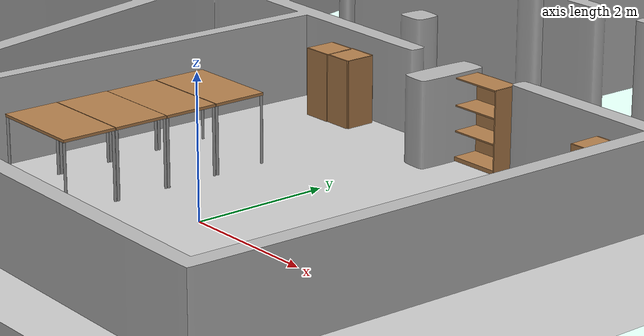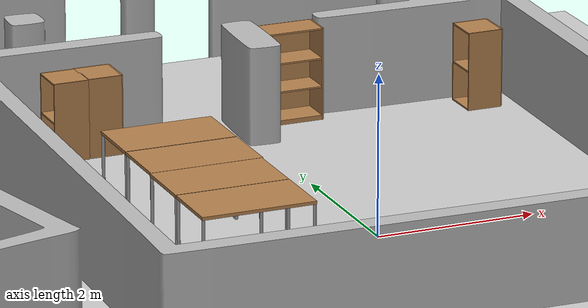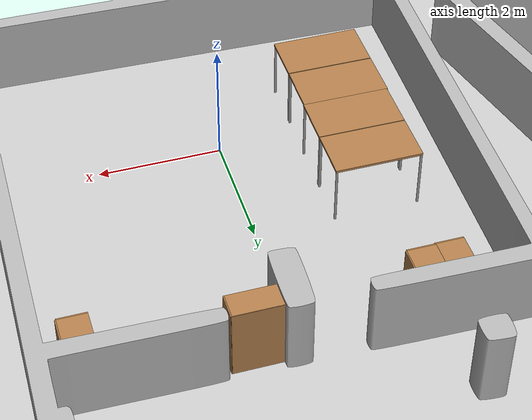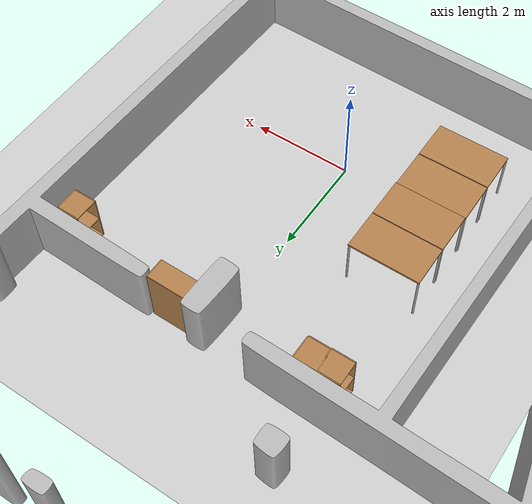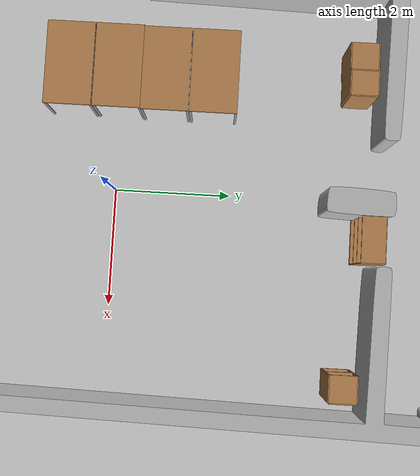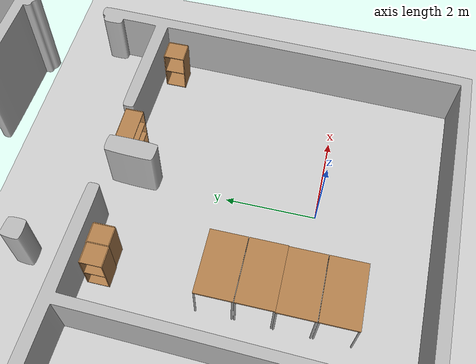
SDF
<sdf version="1.6">
 <world name="default">
  <light name="sun" type="directional">
   <pose>0 0 10 0 -0 0</pose>
   <diffuse>0.8 0.8 0.8 1</diffuse>
   <specular>0.1 0.1 0.1 1</specular>
   <attenuation>
    <range>1000</range>
    <constant>0.9</constant>
    <linear>0.01</linear>
    <quadratic>0.001</quadratic>
   </attenuation>
   <direction>-0.5 0.5 -1</direction>
  </light>
  <model name="ground_plane">
   <static>1</static>
   <link name="link">
    <collision name="collision">
     <geometry><plane><normal>0 0 1</normal><size>100 100</size></plane></geometry>
     <surface><friction><ode><mu>100</mu><mu2>50</mu2></ode></friction></surface>
    </collision>
    <visual name="visual">
     <cast_shadows>0</cast_shadows>
     <geometry><plane><normal>0 0 1</normal><size>100 100</size></plane></geometry>
     <material>
      <script><uri>file://media/materials/scripts/gazebo.material</uri><name>Gazebo/Grey</name></script>
     </material>
    </visual>
   </link>
  </model>
  <model name="brsu_ground_floor">
   <pose>-85 -30 0 0 -0 0</pose>
   <static>1</static>
   <link name="body">
    <visual name="visual">
     <geometry><mesh><uri>file://brsu_ground_floor.stl</uri><scale>1 1 1</scale></mesh></geometry>
    </visual>
    <collision name="collision">
     <geometry><mesh><uri>file://brsu_ground_floor.stl</uri><scale>1 1 1</scale></mesh></geometry>
    </collision>
   </link>
  </model>
  <gravity>0 0 -9.8</gravity>
  <magnetic_field>6e-06 2.3e-05 -4.2e-05</magnetic_field>
  <atmosphere type="adiabatic"/>
  <physics name="default_physics" default="0" type="ode">
   <max_step_size>0.001</max_step_size>
   <real_time_factor>1</real_time_factor>
   <real_time_update_rate>1000</real_time_update_rate>
  </physics>
  <scene><ambient>0.4 0.4 0.4 1</ambient><background>0.7 0.7 0.7 1</background><shadows>1</shadows></scene>
  <spherical_coordinates>
   <surface_model>EARTH_WGS84</surface_model>
   <latitude_deg>0</latitude_deg>
   <longitude_deg>0</longitude_deg>
   <elevation>0</elevation>
   <heading_deg>0</heading_deg>
  </spherical_coordinates>
  <model name="cabinet">
   <static>1</static>
   <link name="cabinet_bottom_plate">
    <inertial>
     <pose>0 0 -1 0 -0 0</pose>
     <inertia><ixx>2.05</ixx><ixy>0</ixy><ixz>0</ixz><iyy>2.05</iyy><iyz>0</iyz><izz>2.05</izz></inertia>
     <mass>25</mass>
    </inertial>
    <collision name="cabinet_bottom_plate_geom">
     <pose>0 0 0.01 0 -0 0</pose>
     <geometry><box><size>0.45 0.45 0.02</size></box></geometry>
    </collision>
    <visual name="cabinet_bottom_plate_geom_visual">
     <pose>0 0 0.01 0 -0 0</pose>
     <geometry><box><size>0.45 0.45 0.02</size></box></geometry>
     <material>
      <script><uri>file://media/materials/scripts/gazebo.material</uri><name>Gazebo/Wood</name></script>
     </material>
    </visual>
    <collision name="cabinet_bottom_plate_geom_cabinet_back_plate">
     <pose>0.235 0 0.51 0 -0 0</pose>
     <geometry><box><size>0.02 0.45 1.02</size></box></geometry>
    </collision>
    <visual name="cabinet_bottom_plate_geom_cabinet_back_plate_visual">
     <pose>0.235 0 0.51 0 -0 0</pose>
     <geometry><box><size>0.02 0.45 1.02</size></box></geometry>
     <material>
      <script><uri>file://media/materials/scripts/gazebo.material</uri><name>Gazebo/Wood</name></script>
     </material>
    </visual>
    <collision name="cabinet_bottom_plate_geom_cabinet_left_plate">
     <pose>0 0.235 0.51 0 -0 0</pose>
     <geometry><box><size>0.45 0.02 1.02</size></box></geometry>
    </collision>
    <visual name="cabinet_bottom_plate_geom_cabinet_left_plate_visual">
     <pose>0 0.235 0.51 0 -0 0</pose>
     <geometry><box><size>0.45 0.02 1.02</size></box></geometry>
     <material>
      <script><uri>file://media/materials/scripts/gazebo.material</uri><name>Gazebo/Wood</name></script>
     </material>
    </visual>
    <collision name="cabinet_bottom_plate_geom_cabinet_middle_plate">
     <pose>0 0 0.51 0 -0 0</pose>
     <geometry><box><size>0.45 0.45 0.02</size></box></geometry>
    </collision>
    <visual name="cabinet_bottom_plate_geom_cabinet_middle_plate_visual">
     <pose>0 0 0.51 0 -0 0</pose>
     <geometry><box><size>0.45 0.45 0.02</size></box></geometry>
     <material>
      <script><uri>file://media/materials/scripts/gazebo.material</uri><name>Gazebo/Wood</name></script>
     </material>
    </visual>
    <collision name="cabinet_bottom_plate_geom_cabinet_right_plate">
     <pose>0 -0.235 0.51 0 -0 0</pose>
     <geometry><box><size>0.45 0.02 1.02</size></box></geometry>
    </collision>
    <visual name="cabinet_bottom_plate_geom_cabinet_right_plate_visual">
     <pose>0 -0.235 0.51 0 -0 0</pose>
     <geometry><box><size>0.45 0.02 1.02</size></box></geometry>
     <material>
      <script><uri>file://media/materials/scripts/gazebo.material</uri><name>Gazebo/Wood</name></script>
     </material>
    </visual>
    <collision name="cabinet_bottom_plate_geom_cabinet_top_plate">
     <pose>0 0 1.01 0 -0 0</pose>
     <geometry><box><size>0.45 0.45 0.02</size></box></geometry>
    </collision>
    <visual name="cabinet_bottom_plate_geom_cabinet_top_plate_visual">
     <pose>0 0 1.01 0 -0 0</pose>
     <geometry><box><size>0.45 0.45 0.02</size></box></geometry>
     <material>
      <script><uri>file://media/materials/scripts/gazebo.material</uri><name>Gazebo/Wood</name></script>
     </material>
    </visual>
   </link>
   <pose>-2.35843 4.1236 0 0 -0 0</pose>
  </model>
  <model name="cabinet_0">
   <static>1</static>
   <link name="cabinet_bottom_plate">
    <inertial>
     <pose>0 0 -1 0 -0 0</pose>
     <inertia><ixx>2.05</ixx><ixy>0</ixy><ixz>0</ixz><iyy>2.05</iyy><iyz>0</iyz><izz>2.05</izz></inertia>
     <mass>25</mass>
    </inertial>
    <collision name="cabinet_bottom_plate_geom">
     <pose>0 0 0.01 0 -0 0</pose>
     <geometry><box><size>0.45 0.45 0.02</size></box></geometry>
    </collision>
    <visual name="cabinet_bottom_plate_geom_visual">
     <pose>0 0 0.01 0 -0 0</pose>
     <geometry><box><size>0.45 0.45 0.02</size></box></geometry>
     <material>
      <script><uri>file://media/materials/scripts/gazebo.material</uri><name>Gazebo/Wood</name></script>
     </material>
    </visual>
    <collision name="cabinet_bottom_plate_geom_cabinet_back_plate">
     <pose>0.235 0 0.51 0 -0 0</pose>
     <geometry><box><size>0.02 0.45 1.02</size></box></geometry>
    </collision>
    <visual name="cabinet_bottom_plate_geom_cabinet_back_plate_visual">
     <pose>0.235 0 0.51 0 -0 0</pose>
     <geometry><box><size>0.02 0.45 1.02</size></box></geometry>
     <material>
      <script><uri>file://media/materials/scripts/gazebo.material</uri><name>Gazebo/Wood</name></script>
     </material>
    </visual>
    <collision name="cabinet_bottom_plate_geom_cabinet_left_plate">
     <pose>0 0.235 0.51 0 -0 0</pose>
     <geometry><box><size>0.45 0.02 1.02</size></box></geometry>
    </collision>
    <visual name="cabinet_bottom_plate_geom_cabinet_left_plate_visual">
     <pose>0 0.235 0.51 0 -0 0</pose>
     <geometry><box><size>0.45 0.02 1.02</size></box></geometry>
     <material>
      <script><uri>file://media/materials/scripts/gazebo.material</uri><name>Gazebo/Wood</name></script>
     </material>
    </visual>
    <collision name="cabinet_bottom_plate_geom_cabinet_middle_plate">
     <pose>0 0 0.51 0 -0 0</pose>
     <geometry><box><size>0.45 0.45 0.02</size></box></geometry>
    </collision>
    <visual name="cabinet_bottom_plate_geom_cabinet_middle_plate_visual">
     <pose>0 0 0.51 0 -0 0</pose>
     <geometry><box><size>0.45 0.45 0.02</size></box></geometry>
     <material>
      <script><uri>file://media/materials/scripts/gazebo.material</uri><name>Gazebo/Wood</name></script>
     </material>
    </visual>
    <collision name="cabinet_bottom_plate_geom_cabinet_right_plate">
     <pose>0 -0.235 0.51 0 -0 0</pose>
     <geometry><box><size>0.45 0.02 1.02</size></box></geometry>
    </collision>
    <visual name="cabinet_bottom_plate_geom_cabinet_right_plate_visual">
     <pose>0 -0.235 0.51 0 -0 0</pose>
     <geometry><box><size>0.45 0.02 1.02</size></box></geometry>
     <material>
      <script><uri>file://media/materials/scripts/gazebo.material</uri><name>Gazebo/Wood</name></script>
     </material>
    </visual>
    <collision name="cabinet_bottom_plate_geom_cabinet_top_plate">
     <pose>0 0 1.01 0 -0 0</pose>
     <geometry><box><size>0.45 0.45 0.02</size></box></geometry>
    </collision>
    <visual name="cabinet_bottom_plate_geom_cabinet_top_plate_visual">
     <pose>0 0 1.01 0 -0 0</pose>
     <geometry><box><size>0.45 0.45 0.02</size></box></geometry>
     <material>
      <script><uri>file://media/materials/scripts/gazebo.material</uri><name>Gazebo/Wood</name></script>
     </material>
    </visual>
   </link>
   <pose>-1.92389 4.1364 0 0 -0 0</pose>
  </model>
  <model name="bookshelf">
   <static>1</static>
   <link name="link">
    <inertial><mass>1</mass></inertial>
    <collision name="back">
     <pose>0 0.005 0.6 0 -0 0</pose>
     <geometry><box><size>0.9 0.01 1.2</size></box></geometry>
    </collision>
    <visual name="visual1">
     <pose>0 0.005 0.6 0 -0 0</pose>
     <geometry><box><size>0.9 0.01 1.2</size></box></geometry>
     <material>
      <script><uri>file://media/materials/scripts/gazebo.material</uri><name>Gazebo/Wood</name></script>
     </material>
    </visual>
    <collision name="left_side">
     <pose>0.45 -0.195 0.6 0 -0 0</pose>
     <geometry><box><size>0.02 0.4 1.2</size></box></geometry>
    </collision>
    <visual name="visual2">
     <pose>0.45 -0.195 0.6 0 -0 0</pose>
     <geometry><box><size>0.02 0.4 1.2</size></box></geometry>
     <material>
      <script><uri>file://media/materials/scripts/gazebo.material</uri><name>Gazebo/Wood</name></script>
     </material>
    </visual>
    <collision name="right_side">
     <pose>-0.45 -0.195 0.6 0 -0 0</pose>
     <geometry><box><size>0.02 0.4 1.2</size></box></geometry>
    </collision>
    <visual name="visual3">
     <pose>-0.45 -0.195 0.6 0 -0 0</pose>
     <geometry><box><size>0.02 0.4 1.2</size></box></geometry>
     <material>
      <script><uri>file://media/materials/scripts/gazebo.material</uri><name>Gazebo/Wood</name></script>
     </material>
    </visual>
    <collision name="bottom">
     <pose>0 -0.195 0.03 0 -0 0</pose>
     <geometry><box><size>0.88 0.4 0.06</size></box></geometry>
    </collision>
    <visual name="visual4">
     <pose>0 -0.195 0.03 0 -0 0</pose>
     <geometry><box><size>0.88 0.4 0.06</size></box></geometry>
     <material>
      <script><uri>file://media/materials/scripts/gazebo.material</uri><name>Gazebo/Wood</name></script>
     </material>
    </visual>
    <collision name="top">
     <pose>0 -0.195 1.19 0 -0 0</pose>
     <geometry><box><size>0.88 0.4 0.02</size></box></geometry>
    </collision>
    <visual name="visual5">
     <pose>0 -0.195 1.19 0 -0 0</pose>
     <geometry><box><size>0.88 0.4 0.02</size></box></geometry>
     <material>
      <script><uri>file://media/materials/scripts/gazebo.material</uri><name>Gazebo/Wood</name></script>
     </material>
    </visual>
    <collision name="low_shelf">
     <pose>0 -0.195 0.43 0 -0 0</pose>
     <geometry><box><size>0.88 0.4 0.02</size></box></geometry>
    </collision>
    <visual name="visual6">
     <pose>0 -0.195 0.43 0 -0 0</pose>
     <geometry><box><size>0.88 0.4 0.02</size></box></geometry>
     <material>
      <script><uri>file://media/materials/scripts/gazebo.material</uri><name>Gazebo/Wood</name></script>
     </material>
    </visual>
    <collision name="high_shelf">
     <pose>0 -0.195 0.8 0 -0 0</pose>
     <geometry><box><size>0.88 0.4 0.02</size></box></geometry>
    </collision>
    <visual name="visual7">
     <pose>0 -0.195 0.8 0 -0 0</pose>
     <geometry><box><size>0.88 0.4 0.02</size></box></geometry>
     <material>
      <script><uri>file://media/materials/scripts/gazebo.material</uri><name>Gazebo/Wood</name></script>
     </material>
    </visual>
   </link>
   <pose>0.631704 4.54535 0 0 -0 0</pose>
  </model>
  <model name="table">
   <static>0</static>
   <link name="link">
    <collision name="surface">
     <pose>0 0 1 0 -0 0</pose>
     <geometry><box><size>1.5 0.8 0.03</size></box></geometry>
     <surface><friction><ode><mu>0.6</mu><mu2>0.6</mu2></ode></friction></surface>
    </collision>
    <visual name="visual1">
     <pose>0 0 1 0 -0 0</pose>
     <geometry><box><size>1.4 0.8 0.04</size></box></geometry>
     <material>
      <script><uri>file://media/materials/scripts/gazebo.material</uri><name>Gazebo/Wood</name></script>
     </material>
    </visual>
    <collision name="front_left_leg">
     <pose>0.68 0.38 0.5 0 -0 0</pose>
     <geometry><cylinder><radius>0.02</radius><length>1</length></cylinder></geometry>
    </collision>
    <visual name="front_left_leg">
     <pose>0.68 0.38 0.5 0 -0 0</pose>
     <geometry><cylinder><radius>0.02</radius><length>1</length></cylinder></geometry>
     <material>
      <script><uri>file://media/materials/scripts/gazebo.material</uri><name>Gazebo/Grey</name></script>
     </material>
    </visual>
    <collision name="front_right_leg">
     <pose>0.68 -0.38 0.5 0 -0 0</pose>
     <geometry><cylinder><radius>0.02</radius><length>1</length></cylinder></geometry>
    </collision>
    <visual name="front_right_leg">
     <pose>0.68 -0.38 0.5 0 -0 0</pose>
     <geometry><cylinder><radius>0.02</radius><length>1</length></cylinder></geometry>
     <material>
      <script><uri>file://media/materials/scripts/gazebo.material</uri><name>Gazebo/Grey</name></script>
     </material>
    </visual>
    <collision name="back_right_leg">
     <pose>-0.68 -0.38 0.5 0 -0 0</pose>
     <geometry><cylinder><radius>0.02</radius><length>1</length></cylinder></geometry>
    </collision>
    <visual name="back_right_leg">
     <pose>-0.68 -0.38 0.5 0 -0 0</pose>
     <geometry><cylinder><radius>0.02</radius><length>1</length></cylinder></geometry>
     <material>
      <script><uri>file://media/materials/scripts/gazebo.material</uri><name>Gazebo/Grey</name></script>
     </material>
    </visual>
    <collision name="back_left_leg">
     <pose>-0.68 0.38 0.5 0 -0 0</pose>
     <geometry><cylinder><radius>0.02</radius><length>1</length></cylinder></geometry>
    </collision>
    <visual name="back_left_leg">
     <pose>-0.68 0.38 0.5 0 -0 0</pose>
     <geometry><cylinder><radius>0.02</radius><length>1</length></cylinder></geometry>
     <material>
      <script><uri>file://media/materials/scripts/gazebo.material</uri><name>Gazebo/Grey</name></script>
     </material>
    </visual>
    <inertial>
     <inertia><ixx>1</ixx><ixy>0</ixy><ixz>0</ixz><iyy>1</iyy><iyz>0</iyz><izz>1</izz></inertia>
     <mass>1</mass>
    </inertial>
   </link>
   <pose>-1.98629 -0.783199 -1e-06 0 1e-06 0</pose>
  </model>
  <model name="table_0">
   <static>0</static>
   <link name="link">
    <collision name="surface">
     <pose>0 0 1 0 -0 0</pose>
     <geometry><box><size>1.5 0.8 0.03</size></box></geometry>
     <surface><friction><ode><mu>0.6</mu><mu2>0.6</mu2></ode></friction></surface>
    </collision>
    <visual name="visual1">
     <pose>0 0 1 0 -0 0</pose>
     <geometry><box><size>1.4 0.8 0.04</size></box></geometry>
     <material>
      <script><uri>file://media/materials/scripts/gazebo.material</uri><name>Gazebo/Wood</name></script>
     </material>
    </visual>
    <collision name="front_left_leg">
     <pose>0.68 0.38 0.5 0 -0 0</pose>
     <geometry><cylinder><radius>0.02</radius><length>1</length></cylinder></geometry>
    </collision>
    <visual name="front_left_leg">
     <pose>0.68 0.38 0.5 0 -0 0</pose>
     <geometry><cylinder><radius>0.02</radius><length>1</length></cylinder></geometry>
     <material>
      <script><uri>file://media/materials/scripts/gazebo.material</uri><name>Gazebo/Grey</name></script>
     </material>
    </visual>
    <collision name="front_right_leg">
     <pose>0.68 -0.38 0.5 0 -0 0</pose>
     <geometry><cylinder><radius>0.02</radius><length>1</length></cylinder></geometry>
    </collision>
    <visual name="front_right_leg">
     <pose>0.68 -0.38 0.5 0 -0 0</pose>
     <geometry><cylinder><radius>0.02</radius><length>1</length></cylinder></geometry>
     <material>
      <script><uri>file://media/materials/scripts/gazebo.material</uri><name>Gazebo/Grey</name></script>
     </material>
    </visual>
    <collision name="back_right_leg">
     <pose>-0.68 -0.38 0.5 0 -0 0</pose>
     <geometry><cylinder><radius>0.02</radius><length>1</length></cylinder></geometry>
    </collision>
    <visual name="back_right_leg">
     <pose>-0.68 -0.38 0.5 0 -0 0</pose>
     <geometry><cylinder><radius>0.02</radius><length>1</length></cylinder></geometry>
     <material>
      <script><uri>file://media/materials/scripts/gazebo.material</uri><name>Gazebo/Grey</name></script>
     </material>
    </visual>
    <collision name="back_left_leg">
     <pose>-0.68 0.38 0.5 0 -0 0</pose>
     <geometry><cylinder><radius>0.02</radius><length>1</length></cylinder></geometry>
    </collision>
    <visual name="back_left_leg">
     <pose>-0.68 0.38 0.5 0 -0 0</pose>
     <geometry><cylinder><radius>0.02</radius><length>1</length></cylinder></geometry>
     <material>
      <script><uri>file://media/materials/scripts/gazebo.material</uri><name>Gazebo/Grey</name></script>
     </material>
    </visual>
    <inertial>
     <inertia><ixx>1</ixx><ixy>0</ixy><ixz>0</ixz><iyy>1</iyy><iyz>0</iyz><izz>1</izz></inertia>
     <mass>1</mass>
    </inertial>
   </link>
   <pose>-1.98691 0.03082 -0.001627 0 -0 0.000181</pose>
  </model>
  <model name="table_1">
   <static>0</static>
   <link name="link">
    <collision name="surface">
     <pose>0 0 1 0 -0 0</pose>
     <geometry><box><size>1.5 0.8 0.03</size></box></geometry>
     <surface><friction><ode><mu>0.6</mu><mu2>0.6</mu2></ode></friction></surface>
    </collision>
    <visual name="visual1">
     <pose>0 0 1 0 -0 0</pose>
     <geometry><box><size>1.4 0.8 0.04</size></box></geometry>
     <material>
      <script><uri>file://media/materials/scripts/gazebo.material</uri><name>Gazebo/Wood</name></script>
     </material>
    </visual>
    <collision name="front_left_leg">
     <pose>0.68 0.38 0.5 0 -0 0</pose>
     <geometry><cylinder><radius>0.02</radius><length>1</length></cylinder></geometry>
    </collision>
    <visual name="front_left_leg">
     <pose>0.68 0.38 0.5 0 -0 0</pose>
     <geometry><cylinder><radius>0.02</radius><length>1</length></cylinder></geometry>
     <material>
      <script><uri>file://media/materials/scripts/gazebo.material</uri><name>Gazebo/Grey</name></script>
     </material>
    </visual>
    <collision name="front_right_leg">
     <pose>0.68 -0.38 0.5 0 -0 0</pose>
     <geometry><cylinder><radius>0.02</radius><length>1</length></cylinder></geometry>
    </collision>
    <visual name="front_right_leg">
     <pose>0.68 -0.38 0.5 0 -0 0</pose>
     <geometry><cylinder><radius>0.02</radius><length>1</length></cylinder></geometry>
     <material>
      <script><uri>file://media/materials/scripts/gazebo.material</uri><name>Gazebo/Grey</name></script>
     </material>
    </visual>
    <collision name="back_right_leg">
     <pose>-0.68 -0.38 0.5 0 -0 0</pose>
     <geometry><cylinder><radius>0.02</radius><length>1</length></cylinder></geometry>
    </collision>
    <visual name="back_right_leg">
     <pose>-0.68 -0.38 0.5 0 -0 0</pose>
     <geometry><cylinder><radius>0.02</radius><length>1</length></cylinder></geometry>
     <material>
      <script><uri>file://media/materials/scripts/gazebo.material</uri><name>Gazebo/Grey</name></script>
     </material>
    </visual>
    <collision name="back_left_leg">
     <pose>-0.68 0.38 0.5 0 -0 0</pose>
     <geometry><cylinder><radius>0.02</radius><length>1</length></cylinder></geometry>
    </collision>
    <visual name="back_left_leg">
     <pose>-0.68 0.38 0.5 0 -0 0</pose>
     <geometry><cylinder><radius>0.02</radius><length>1</length></cylinder></geometry>
     <material>
      <script><uri>file://media/materials/scripts/gazebo.material</uri><name>Gazebo/Grey</name></script>
     </material>
    </visual>
    <inertial>
     <inertia><ixx>1</ixx><ixy>0</ixy><ixz>0</ixz><iyy>1</iyy><iyz>0</iyz><izz>1</izz></inertia>
     <mass>1</mass>
    </inertial>
   </link>
   <pose>-1.9739 0.830823 -5e-06 1e-06 -6e-06 0.000181</pose>
  </model>
  <model name="table_2">
   <static>0</static>
   <link name="link">
    <collision name="surface">
     <pose>0 0 1 0 -0 0</pose>
     <geometry><box><size>1.5 0.8 0.03</size></box></geometry>
     <surface><friction><ode><mu>0.6</mu><mu2>0.6</mu2></ode></friction></surface>
    </collision>
    <visual name="visual1">
     <pose>0 0 1 0 -0 0</pose>
     <geometry><box><size>1.4 0.8 0.04</size></box></geometry>
     <material>
      <script><uri>file://media/materials/scripts/gazebo.material</uri><name>Gazebo/Wood</name></script>
     </material>
    </visual>
    <collision name="front_left_leg">
     <pose>0.68 0.38 0.5 0 -0 0</pose>
     <geometry><cylinder><radius>0.02</radius><length>1</length></cylinder></geometry>
    </collision>
    <visual name="front_left_leg">
     <pose>0.68 0.38 0.5 0 -0 0</pose>
     <geometry><cylinder><radius>0.02</radius><length>1</length></cylinder></geometry>
     <material>
      <script><uri>file://media/materials/scripts/gazebo.material</uri><name>Gazebo/Grey</name></script>
     </material>
    </visual>
    <collision name="front_right_leg">
     <pose>0.68 -0.38 0.5 0 -0 0</pose>
     <geometry><cylinder><radius>0.02</radius><length>1</length></cylinder></geometry>
    </collision>
    <visual name="front_right_leg">
     <pose>0.68 -0.38 0.5 0 -0 0</pose>
     <geometry><cylinder><radius>0.02</radius><length>1</length></cylinder></geometry>
     <material>
      <script><uri>file://media/materials/scripts/gazebo.material</uri><name>Gazebo/Grey</name></script>
     </material>
    </visual>
    <collision name="back_right_leg">
     <pose>-0.68 -0.38 0.5 0 -0 0</pose>
     <geometry><cylinder><radius>0.02</radius><length>1</length></cylinder></geometry>
    </collision>
    <visual name="back_right_leg">
     <pose>-0.68 -0.38 0.5 0 -0 0</pose>
     <geometry><cylinder><radius>0.02</radius><length>1</length></cylinder></geometry>
     <material>
      <script><uri>file://media/materials/scripts/gazebo.material</uri><name>Gazebo/Grey</name></script>
     </material>
    </visual>
    <collision name="back_left_leg">
     <pose>-0.68 0.38 0.5 0 -0 0</pose>
     <geometry><cylinder><radius>0.02</radius><length>1</length></cylinder></geometry>
    </collision>
    <visual name="back_left_leg">
     <pose>-0.68 0.38 0.5 0 -0 0</pose>
     <geometry><cylinder><radius>0.02</radius><length>1</length></cylinder></geometry>
     <material>
      <script><uri>file://media/materials/scripts/gazebo.material</uri><name>Gazebo/Grey</name></script>
     </material>
    </visual>
    <inertial>
     <inertia><ixx>1</ixx><ixy>0</ixy><ixz>0</ixz><iyy>1</iyy><iyz>0</iyz><izz>1</izz></inertia>
     <mass>1</mass>
    </inertial>
   </link>
   <pose>-1.97423 1.64463 -2e-06 0 -0 0</pose>
  </model>
  <model name="cabinet_0_clone">
   <static>1</static>
   <link name="cabinet_bottom_plate">
    <inertial>
     <pose>0 0 -1 0 -0 0</pose>
     <inertia><ixx>2.05</ixx><ixy>0</ixy><ixz>0</ixz><iyy>2.05</iyy><iyz>0</iyz><izz>2.05</izz></inertia>
     <mass>25</mass>
    </inertial>
    <collision name="cabinet_bottom_plate_geom">
     <pose>0 0 0.01 0 -0 0</pose>
     <geometry><box><size>0.45 0.45 0.02</size></box></geometry>
    </collision>
    <visual name="cabinet_bottom_plate_geom_visual">
     <pose>0 0 0.01 0 -0 0</pose>
     <geometry><box><size>0.45 0.45 0.02</size></box></geometry>
     <material>
      <script><uri>file://media/materials/scripts/gazebo.material</uri><name>Gazebo/Wood</name></script>
     </material>
    </visual>
    <collision name="cabinet_bottom_plate_geom_cabinet_back_plate">
     <pose>0.235 0 0.51 0 -0 0</pose>
     <geometry><box><size>0.02 0.45 1.02</size></box></geometry>
    </collision>
    <visual name="cabinet_bottom_plate_geom_cabinet_back_plate_visual">
     <pose>0.235 0 0.51 0 -0 0</pose>
     <geometry><box><size>0.02 0.45 1.02</size></box></geometry>
     <material>
      <script><uri>file://media/materials/scripts/gazebo.material</uri><name>Gazebo/Wood</name></script>
     </material>
    </visual>
    <collision name="cabinet_bottom_plate_geom_cabinet_left_plate">
     <pose>0 0.235 0.51 0 -0 0</pose>
     <geometry><box><size>0.45 0.02 1.02</size></box></geometry>
    </collision>
    <visual name="cabinet_bottom_plate_geom_cabinet_left_plate_visual">
     <pose>0 0.235 0.51 0 -0 0</pose>
     <geometry><box><size>0.45 0.02 1.02</size></box></geometry>
     <material>
      <script><uri>file://media/materials/scripts/gazebo.material</uri><name>Gazebo/Wood</name></script>
     </material>
    </visual>
    <collision name="cabinet_bottom_plate_geom_cabinet_middle_plate">
     <pose>0 0 0.51 0 -0 0</pose>
     <geometry><box><size>0.45 0.45 0.02</size></box></geometry>
    </collision>
    <visual name="cabinet_bottom_plate_geom_cabinet_middle_plate_visual">
     <pose>0 0 0.51 0 -0 0</pose>
     <geometry><box><size>0.45 0.45 0.02</size></box></geometry>
     <material>
      <script><uri>file://media/materials/scripts/gazebo.material</uri><name>Gazebo/Wood</name></script>
     </material>
    </visual>
    <collision name="cabinet_bottom_plate_geom_cabinet_right_plate">
     <pose>0 -0.235 0.51 0 -0 0</pose>
     <geometry><box><size>0.45 0.02 1.02</size></box></geometry>
    </collision>
    <visual name="cabinet_bottom_plate_geom_cabinet_right_plate_visual">
     <pose>0 -0.235 0.51 0 -0 0</pose>
     <geometry><box><size>0.45 0.02 1.02</size></box></geometry>
     <material>
      <script><uri>file://media/materials/scripts/gazebo.material</uri><name>Gazebo/Wood</name></script>
     </material>
    </visual>
    <collision name="cabinet_bottom_plate_geom_cabinet_top_plate">
     <pose>0 0 1.01 0 -0 0</pose>
     <geometry><box><size>0.45 0.45 0.02</size></box></geometry>
    </collision>
    <visual name="cabinet_bottom_plate_geom_cabinet_top_plate_visual">
     <pose>0 0 1.01 0 -0 0</pose>
     <geometry><box><size>0.45 0.45 0.02</size></box></geometry>
     <material>
      <script><uri>file://media/materials/scripts/gazebo.material</uri><name>Gazebo/Wood</name></script>
     </material>
    </visual>
   </link>
   <pose>3.12255 3.98339 0 0 -0 0</pose>
  </model>
 </world>
</sdf>
